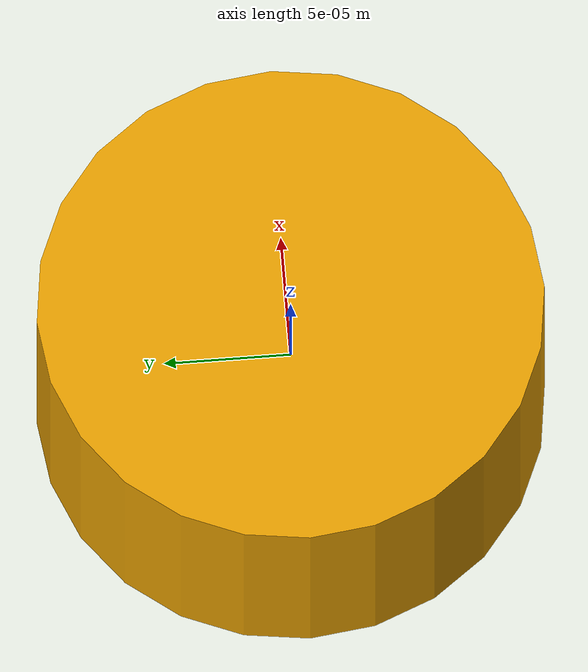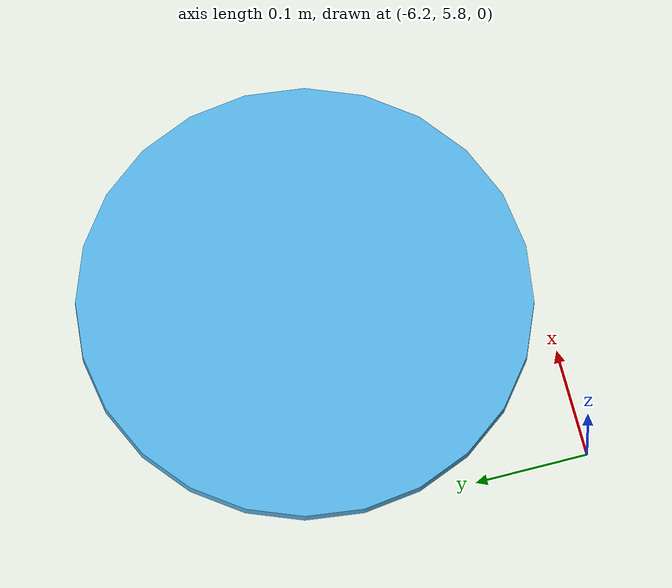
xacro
<?xml version="1.0"?>

 <robot xmlns:xacro="http://www.ros.org/wiki/xacro" name="camera">

	<!--base_link-->
	<link name = "base_link">
		<collision>
			<origin xyz = "0 0 0" rpy = "0 0 0"/>
			<geometry>
				<cylinder length = "0.0001" radius = "0.0001"/>
			</geometry>
		</collision>
		<visual>
			<origin xyz = "0 0 0" rpy = "0 0 0"/>
			<geometry>
				<cylinder length = "0.0001" radius = "0.0001"/>
			</geometry>
		</visual>

		<inertial>
       	  <mass value="0" />
       	  <origin xyz="0 0 0" rpy="0 0 0"/>
      	  <inertia ixx="1.0" ixy="0" ixz="0" iyy="1.0" iyz="0" izz="1.0" />
		</inertial>
	</link>

	<link name = "mark1_link">
		<collision>
			<origin xyz = "0 0 0" rpy = "0 0 0"/>
			<geometry>
				<cylinder length = "0.01" radius = "0.2"/>
			</geometry>
		</collision>
		<visual>
			<origin xyz = "0 0 0" rpy = "0 0 0"/>
			<geometry>
				<cylinder length = "0.01" radius = "0.2"/>
			</geometry>
		</visual>

		<inertial>
       	  <mass value="100" />
       	  <origin xyz="0 0 0" rpy="0 0 0"/>
      	  <inertia ixx="1.0" ixy="0" ixz="0" iyy="1.0" iyz="0" izz="1.0" />
		</inertial>
	</link>

	<link name = "mark2_link">
		<collision>
			<origin xyz = "0 0 0" rpy = "0 0 0"/>
			<geometry>
				<cylinder length = "0.01" radius = "0.2"/>
			</geometry>
		</collision>
		<visual>
			<origin xyz = "0 0 0" rpy = "0 0 0"/>
			<geometry>
				<cylinder length = "0.01" radius = "0.2"/>
			</geometry>
		</visual>

		<inertial>
       	  <mass value="100" />
       	  <origin xyz="0 0 0" rpy="0 0 0"/>
      	  <inertia ixx="1.0" ixy="0" ixz="0" iyy="1.0" iyz="0" izz="1.0" />
		</inertial>
	</link>

	<joint name = "mark1_to_base" type = "fixed">
		<parent link = "base_link"/>
		<child link = "mark1_link"/>
		<origin xyz = "-6 6 0" rpy = "0 0 0"/>
	</joint>

	<joint name = "mark2_to_base" type = "fixed">
		<parent link = "base_link"/>
		<child link = "mark2_link"/>
		<origin xyz = "6 -6 0" rpy = "0 0 0"/>
	</joint>

  <gazebo reference="mark2_link">
     <material>Gazebo/Black</material>
  </gazebo>

</robot>
